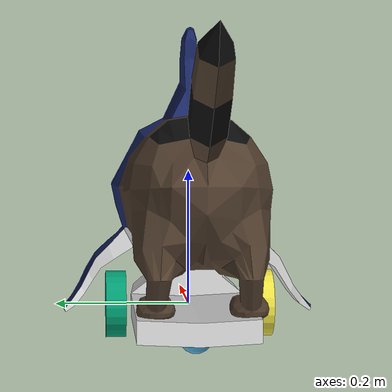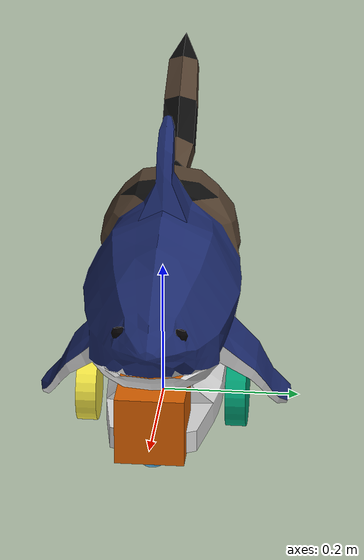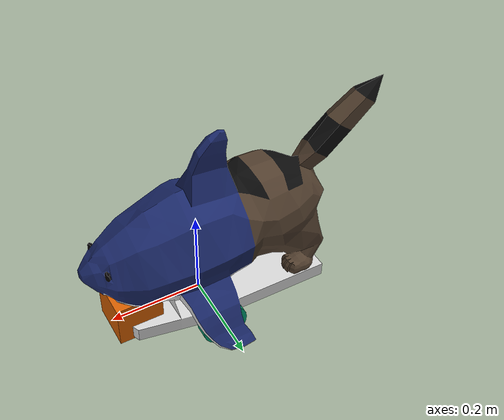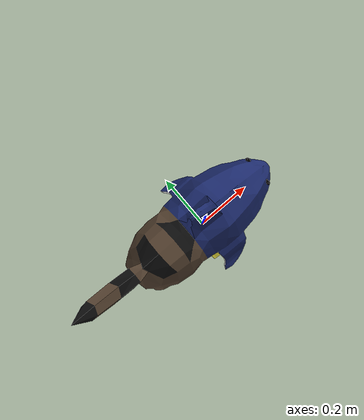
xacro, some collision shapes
<?xml version='1.0'?>

<robot name="udacity_bot" xmlns:xacro="http://www.ros.org/wiki/xacro">
  <xacro:include filename="$(find lasersharkcat_bot)/urdf/lasersharkcat_bot.gazebo" />
  <link name="robot_footprint"></link>

  <joint name="robot_footprint_joint" type="fixed">
    <origin xyz="0 0 0" rpy="0 0 0" />
    <parent link="robot_footprint"/>
    <child link="chassis" />
  </joint>

  <link name='chassis'>
    <pose>0 0 0.15 0 0 0</pose>

    <inertial>
      <mass value="15.0"/>
      <origin xyz="0.0 0 0" rpy=" 0 0 0"/>
      <inertia
          ixx="0.1" ixy="0" ixz="0"
          iyy="0.1" iyz="0"
          izz="0.1"
      />
    </inertial>

    <collision name='collision'>
      <origin xyz="0 0 0" rpy=" 0 0 0"/>
      <geometry>
        <box size=".2 .15 .05"/>
      </geometry>
    </collision>

    <visual name='chassis_visual'>
      <origin xyz="0 0 0" rpy=" 0 0 0"/>
      <geometry>
        <!--box size=".4 .2 .1"/-->
        <mesh filename="file://$(find lasersharkcat_bot)/meshes/lasercatsharkrobot-base3.dae">
           <scale>0.8 0.8 0.8</scale>
        </mesh>
      </geometry>
    </visual>

    <collision name='back_caster_collision'>
      <origin xyz="-0.15 0 -0.025" rpy=" 0 0 0"/>
      <geometry>
        <sphere radius="0.024999"/>
      </geometry>
    </collision>

    <visual name='back_caster_visual'>
      <origin xyz="-0.15 0 -0.025" rpy=" 0 0 0"/>
      <geometry>
        <sphere radius="0.024999"/>
      </geometry>
    </visual>

    <collision name='front_caster_collision'>
      <origin xyz="0.15 0 -0.025" rpy=" 0 0 0"/>
      <geometry>
        <sphere radius="0.024999"/>
      </geometry>
    </collision>

    <visual name='front_caster_visual'>
      <origin xyz="0.15 0 -0.025" rpy=" 0 0 0"/>
      <geometry>
        <sphere radius="0.024999"/>
      </geometry>
    </visual>

  </link>

  <link name='left_wheel'>

    <inertial>
      <mass value="5.0"/>
      <origin xyz="0 0 0" rpy=" 0 0 0"/>
      <inertia
          ixx="0.1" ixy="0" ixz="0"
          iyy="0.1" iyz="0"
          izz="0.1"
      />
    </inertial>

    <collision name='left_wheel_collision'>
      <origin xyz="0 0 0" rpy=" 1.5707 0 0"/>
      <geometry>
        <cylinder radius="0.05" length="0.03"/>
      </geometry>
    </collision>

    <visual name='left_wheel_visual'>
      <origin xyz="0 0 0" rpy=" 1.5707 0 0"/>
      <geometry>
        <cylinder radius=".05" length="0.03"/>
      </geometry>
    </visual>

  </link>

  <link name='right_wheel'>

    <inertial>
      <mass value="5.0"/>
      <origin xyz="0 0 0" rpy=" 0 0 0"/>
      <inertia
          ixx="0.1" ixy="0" ixz="0"
          iyy="0.1" iyz="0"
          izz="0.1"
      />
    </inertial>

    <collision name='right_wheel_collision'>
      <origin xyz="0 0 0" rpy=" -1.5707 0 0"/>
      <geometry>
        <cylinder radius=".05" length="0.03"/>
      </geometry>
    </collision>

    <visual name='right_wheel_visual'>
      <origin xyz="0 0 0" rpy=" -1.5707 0 0"/>
      <geometry>
        <cylinder radius=".05" length="0.03"/>
      </geometry>
    </visual>

  </link>

  <joint type="continuous" name="left_wheel_hinge">
    <origin xyz="0 0.11 0" rpy="0 0 0"/>
    <child link="left_wheel"/>
    <parent link="chassis"/>
    <axis xyz="0 1 0" rpy="0 0 0"/>
    <limit effort="10000" velocity="1000"/>
    <dynamics damping="1.0" friction="1.0"/>
  </joint>

  <joint type="continuous" name="right_wheel_hinge">
    <origin xyz="0 -0.11 0" rpy="0 0 0"/>
    <child link="right_wheel"/>
    <parent link="chassis"/>
    <axis xyz="0 1 0" rpy="0 0 0"/>
    <limit effort="10000" velocity="1000"/>
    <dynamics damping="1.0" friction="1.0"/>
  </joint>

  <joint name="camera_joint" type="fixed">
    <origin xyz="0.185 0 .03" rpy="0 0 0" />
    <child link="camera" />
    <parent link="chassis" />
  </joint>

  <link name="camera">
    <inertial>
      <mass value="0.1"/>
      <origin xyz="0 0 0" rpy=" 0 0 0"/>
      <inertia
          ixx="1e-6" ixy="0" ixz="0"
          iyy="1e-6" iyz="0"
          izz="1e-6"
      />
    </inertial>
    <collision>
      <origin xyz="0 0 0" rpy=" 0 0 0"/>
      <geometry>
        <box size="0.01 0.01 0.01" />
      </geometry>
    </collision>
    <visual>
      <origin xyz="0 0 0" rpy=" 0 0 0"/>
      <geometry>
        <box size="0.01 0.01 0.01" />
      </geometry>
    </visual>
  </link>

  <joint name="hokuyo_joint" type="fixed">
    <origin xyz=".155 0 .03"/>
    <child link="hokuyo" />
    <parent link="chassis" />
  </joint>

  <link name="hokuyo">
    <inertial>
      <mass value="0.1"/>
      <origin xyz="0.0 0 0" rpy=" 0 0 0"/>
      <inertia
          ixx="1e-6" ixy="0" ixz="0"
          iyy="1e-6" iyz="0"
          izz="1e-6"
      />
    </inertial>
    <collision>
      <origin xyz="0 0 0" rpy="0 0 0"/>
      <geometry>
        <box size="0.1 0.1 0.1" />
      </geometry>
    </collision>
    <visual>
      <origin xyz="0 0 0" rpy="0 0 0"/>
      <geometry>
        <mesh filename="package://lasersharkcat_bot/meshes/hokuyo.dae" />
      </geometry>
    </visual>
  </link>

</robot>
